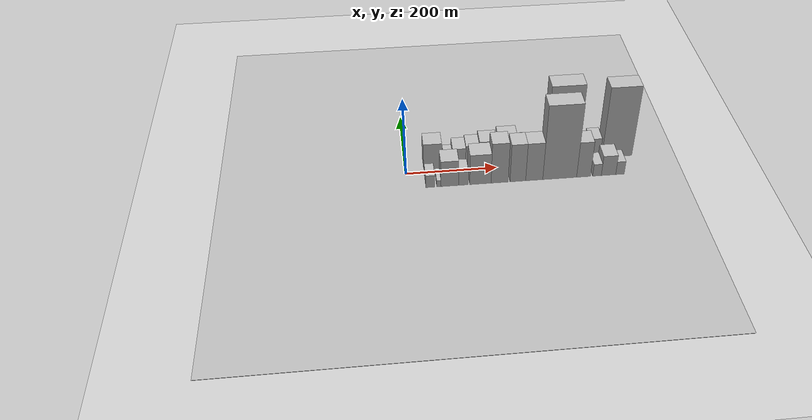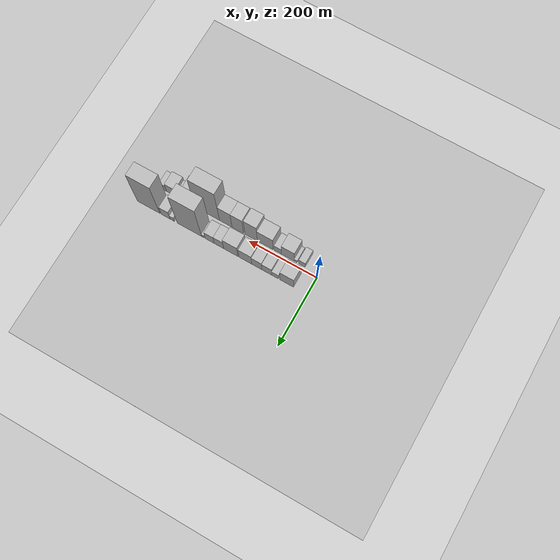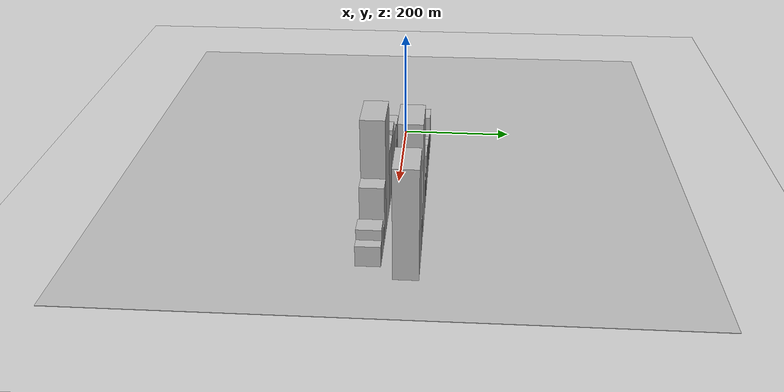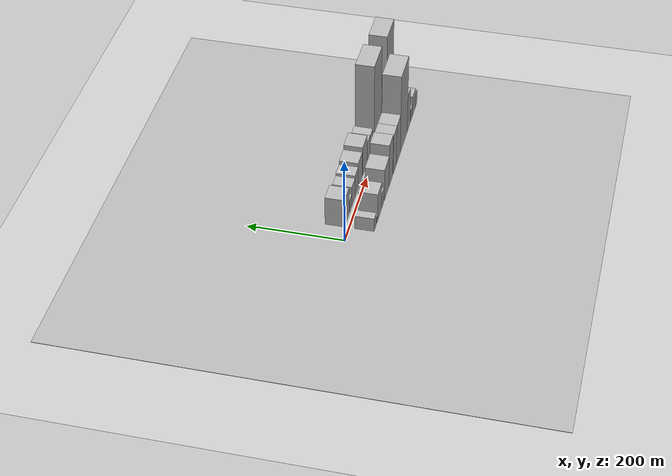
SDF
<?xml version="1.0" encoding="utf-8"?>

<sdf version="1.6">

   <world name="default">

      <gui fullscreen="0">

         <camera name="user_camera">

            <pose>-15 0 4.57585 0 0 0</pose>

            <view_controller>orbit</view_controller>

         </camera>

      </gui>

      <scene>

         <sky>

           <clouds>

             <speed>12</speed>

           </clouds>

         </sky>

         <ambient>0.4 0.4 0.4 1</ambient>

         <background>0.7 0.7 0.7 1</background>

         <shadows>1</shadows>

      </scene>

      <gravity>0 0 -9.8066</gravity>

      <magnetic_field>6e-06 2.3e-05 -4.2e-05</magnetic_field>

      <physics default="0" name="default_physics" type="ode">

         <ode>

            <solver>

               <type>quick</type>

               <iters>10</iters>

               <sor>1.0</sor>

               <use_dynamic_moi_rescaling>0</use_dynamic_moi_rescaling>

            </solver>

            <constraints>

               <cfm>0</cfm>

               <erp>0.2</erp>

               <contact_max_correcting_vel>100</contact_max_correcting_vel>

               <contact_surface_layer>0.001</contact_surface_layer>

            </constraints>

         </ode>

         <max_step_size>0.004</max_step_size>

         <real_time_factor>1</real_time_factor>

         <real_time_update_rate>250</real_time_update_rate>

      </physics>

      <light name="sun" type="directional">

         <cast_shadows>1</cast_shadows>

         <pose>0 0 10 0 0 0</pose>

         <diffuse>0.8 0.8 0.8 1</diffuse>

         <specular>0.2 0.2 0.2 1</specular>

         <attenuation>

            <range>1000</range>

            <constant>0.9</constant>

            <linear>0.01</linear>

            <quadratic>0.001</quadratic>

         </attenuation>

         <direction>-0.5 0.1 -0.9</direction>

      </light>

      <include>

         <name>ground_plane_1</name>

         <uri>model://HANNAS_ground_plane</uri>

         <pose>0 0 0  0 0 0</pose>

      </include>

      <include>

         <name>ground_plane_2</name>

         <uri>model://HANNAS_ground_plane</uri>

         <pose>100 0 0  0 0 0</pose>

      </include>

      <model name="building_1">

         <static>1</static>

         <pose frame="">60.0417 30.0000 0 0.000000 0.000000 1.570796</pose>

         <link name="link">

            <pose frame="">0 0 34.50 0 0 0</pose>

            <collision name="collision">

               <geometry>

                  <box>

                     <size>40.0000 40.0835 69.0000</size>

                  </box>

               </geometry>

               <max_contacts>10</max_contacts>

               <surface>

                  <contact>

                     <ode/>

                  </contact>

                  <bounce/>

                  <friction>

                     <torsional>

                        <ode/>

                     </torsional>

                     <ode/>

                  </friction>

               </surface>

            </collision>

            <visual name="visual">

               <cast_shadows>0</cast_shadows>

               <geometry>

                  <box>

                     <size>40.0000 40.0835 69.0000</size>

                  </box>

               </geometry>

               <material>

                  <script>

                     <uri>model://HANNAS_wall/materials/scripts</uri>

                     <uri>model://HANNAS_wall/materials/textures</uri>

                     <name>vrc/HANNAS_wall</name>

                  </script>

               </material>

            </visual>

            <self_collide>0</self_collide>

            <enable_wind>0</enable_wind>

            <kinematic>0</kinematic>

         </link>

      </model>

      <model name="building_2">

         <static>1</static>

         <pose frame="">93.8343 30.0000 0 0.000000 0.000000 1.570796</pose>

         <link name="link">

            <pose frame="">0 0 16.50 0 0 0</pose>

            <collision name="collision">

               <geometry>

                  <box>

                     <size>40.0000 19.5016 33.0000</size>

                  </box>

               </geometry>

               <max_contacts>10</max_contacts>

               <surface>

                  <contact>

                     <ode/>

                  </contact>

                  <bounce/>

                  <friction>

                     <torsional>

                        <ode/>

                     </torsional>

                     <ode/>

                  </friction>

               </surface>

            </collision>

            <visual name="visual">

               <cast_shadows>0</cast_shadows>

               <geometry>

                  <box>

                     <size>40.0000 19.5016 33.0000</size>

                  </box>

               </geometry>

               <material>

                  <script>

                     <uri>model://HANNAS_wall/materials/scripts</uri>

                     <uri>model://HANNAS_wall/materials/textures</uri>

                     <name>vrc/HANNAS_wall</name>

                  </script>

               </material>

            </visual>

            <self_collide>0</self_collide>

            <enable_wind>0</enable_wind>

            <kinematic>0</kinematic>

         </link>

      </model>

      <model name="building_3">

         <static>1</static>

         <pose frame="">118.0130 30.0000 0 0.000000 0.000000 1.570796</pose>

         <link name="link">

            <pose frame="">0 0 25.50 0 0 0</pose>

            <collision name="collision">

               <geometry>

                  <box>

                     <size>40.0000 28.8559 51.0000</size>

                  </box>

               </geometry>

               <max_contacts>10</max_contacts>

               <surface>

                  <contact>

                     <ode/>

                  </contact>

                  <bounce/>

                  <friction>

                     <torsional>

                        <ode/>

                     </torsional>

                     <ode/>

                  </friction>

               </surface>

            </collision>

            <visual name="visual">

               <cast_shadows>0</cast_shadows>

               <geometry>

                  <box>

                     <size>40.0000 28.8559 51.0000</size>

                  </box>

               </geometry>

               <material>

                  <script>

                     <uri>model://HANNAS_wall/materials/scripts</uri>

                     <uri>model://HANNAS_wall/materials/textures</uri>

                     <name>vrc/HANNAS_wall</name>

                  </script>

               </material>

            </visual>

            <self_collide>0</self_collide>

            <enable_wind>0</enable_wind>

            <kinematic>0</kinematic>

         </link>

      </model>

      <model name="building_4">

         <static>1</static>

         <pose frame="">147.2258 30.0000 0 0.000000 0.000000 1.570796</pose>

         <link name="link">

            <pose frame="">0 0 28.50 0 0 0</pose>

            <collision name="collision">

               <geometry>

                  <box>

                     <size>40.0000 29.5697 57.0000</size>

                  </box>

               </geometry>

               <max_contacts>10</max_contacts>

               <surface>

                  <contact>

                     <ode/>

                  </contact>

                  <bounce/>

                  <friction>

                     <torsional>

                        <ode/>

                     </torsional>

                     <ode/>

                  </friction>

               </surface>

            </collision>

            <visual name="visual">

               <cast_shadows>0</cast_shadows>

               <geometry>

                  <box>

                     <size>40.0000 29.5697 57.0000</size>

                  </box>

               </geometry>

               <material>

                  <script>

                     <uri>model://HANNAS_wall/materials/scripts</uri>

                     <uri>model://HANNAS_wall/materials/textures</uri>

                     <name>vrc/HANNAS_wall</name>

                  </script>

               </material>

            </visual>

            <self_collide>0</self_collide>

            <enable_wind>0</enable_wind>

            <kinematic>0</kinematic>

         </link>

      </model>

      <model name="building_5">

         <static>1</static>

         <pose frame="">180.6834 30.0000 0 0.000000 0.000000 1.570796</pose>

         <link name="link">

            <pose frame="">0 0 33.00 0 0 0</pose>

            <collision name="collision">

               <geometry>

                  <box>

                     <size>40.0000 37.3455 66.0000</size>

                  </box>

               </geometry>

               <max_contacts>10</max_contacts>

               <surface>

                  <contact>

                     <ode/>

                  </contact>

                  <bounce/>

                  <friction>

                     <torsional>

                        <ode/>

                     </torsional>

                     <ode/>

                  </friction>

               </surface>

            </collision>

            <visual name="visual">

               <cast_shadows>0</cast_shadows>

               <geometry>

                  <box>

                     <size>40.0000 37.3455 66.0000</size>

                  </box>

               </geometry>

               <material>

                  <script>

                     <uri>model://HANNAS_wall/materials/scripts</uri>

                     <uri>model://HANNAS_wall/materials/textures</uri>

                     <name>vrc/HANNAS_wall</name>

                  </script>

               </material>

            </visual>

            <self_collide>0</self_collide>

            <enable_wind>0</enable_wind>

            <kinematic>0</kinematic>

         </link>

      </model>

      <model name="building_6">

         <static>1</static>

         <pose frame="">223.3771 30.0000 0 0.000000 0.000000 1.570796</pose>

         <link name="link">

            <pose frame="">0 0 37.50 0 0 0</pose>

            <collision name="collision">

               <geometry>

                  <box>

                     <size>40.0000 42.0418 75.0000</size>

                  </box>

               </geometry>

               <max_contacts>10</max_contacts>

               <surface>

                  <contact>

                     <ode/>

                  </contact>

                  <bounce/>

                  <friction>

                     <torsional>

                        <ode/>

                     </torsional>

                     <ode/>

                  </friction>

               </surface>

            </collision>

            <visual name="visual">

               <cast_shadows>0</cast_shadows>

               <geometry>

                  <box>

                     <size>40.0000 42.0418 75.0000</size>

                  </box>

               </geometry>

               <material>

                  <script>

                     <uri>model://HANNAS_wall/materials/scripts</uri>

                     <uri>model://HANNAS_wall/materials/textures</uri>

                     <name>vrc/HANNAS_wall</name>

                  </script>

               </material>

            </visual>

            <self_collide>0</self_collide>

            <enable_wind>0</enable_wind>

            <kinematic>0</kinematic>

         </link>

      </model>

      <model name="building_7">

         <static>1</static>

         <pose frame="">258.3676 30.0000 0 0.000000 0.000000 1.570796</pose>

         <link name="link">

            <pose frame="">0 0 27.00 0 0 0</pose>

            <collision name="collision">

               <geometry>

                  <box>

                     <size>40.0000 27.9392 54.0000</size>

                  </box>

               </geometry>

               <max_contacts>10</max_contacts>

               <surface>

                  <contact>

                     <ode/>

                  </contact>

                  <bounce/>

                  <friction>

                     <torsional>

                        <ode/>

                     </torsional>

                     <ode/>

                  </friction>

               </surface>

            </collision>

            <visual name="visual">

               <cast_shadows>0</cast_shadows>

               <geometry>

                  <box>

                     <size>40.0000 27.9392 54.0000</size>

                  </box>

               </geometry>

               <material>

                  <script>

                     <uri>model://HANNAS_wall/materials/scripts</uri>

                     <uri>model://HANNAS_wall/materials/textures</uri>

                     <name>vrc/HANNAS_wall</name>

                  </script>

               </material>

            </visual>

            <self_collide>0</self_collide>

            <enable_wind>0</enable_wind>

            <kinematic>0</kinematic>

         </link>

      </model>

      <model name="building_8">

         <static>1</static>

         <pose frame="">285.7887 30.0000 0 0.000000 0.000000 1.570796</pose>

         <link name="link">

            <pose frame="">0 0 25.50 0 0 0</pose>

            <collision name="collision">

               <geometry>

                  <box>

                     <size>40.0000 26.9031 51.0000</size>

                  </box>

               </geometry>

               <max_contacts>10</max_contacts>

               <surface>

                  <contact>

                     <ode/>

                  </contact>

                  <bounce/>

                  <friction>

                     <torsional>

                        <ode/>

                     </torsional>

                     <ode/>

                  </friction>

               </surface>

            </collision>

            <visual name="visual">

               <cast_shadows>0</cast_shadows>

               <geometry>

                  <box>

                     <size>40.0000 26.9031 51.0000</size>

                  </box>

               </geometry>

               <material>

                  <script>

                     <uri>model://HANNAS_wall/materials/scripts</uri>

                     <uri>model://HANNAS_wall/materials/textures</uri>

                     <name>vrc/HANNAS_wall</name>

                  </script>

               </material>

            </visual>

            <self_collide>0</self_collide>

            <enable_wind>0</enable_wind>

            <kinematic>0</kinematic>

         </link>

      </model>

      <model name="building_9">

         <static>1</static>

         <pose frame="">306.2290 30.0000 0 0.000000 0.000000 1.570796</pose>

         <link name="link">

            <pose frame="">0 0 9.00 0 0 0</pose>

            <collision name="collision">

               <geometry>

                  <box>

                     <size>40.0000 7.9774 18.0000</size>

                  </box>

               </geometry>

               <max_contacts>10</max_contacts>

               <surface>

                  <contact>

                     <ode/>

                  </contact>

                  <bounce/>

                  <friction>

                     <torsional>

                        <ode/>

                     </torsional>

                     <ode/>

                  </friction>

               </surface>

            </collision>

            <visual name="visual">

               <cast_shadows>0</cast_shadows>

               <geometry>

                  <box>

                     <size>40.0000 7.9774 18.0000</size>

                  </box>

               </geometry>

               <material>

                  <script>

                     <uri>model://HANNAS_wall/materials/scripts</uri>

                     <uri>model://HANNAS_wall/materials/textures</uri>

                     <name>vrc/HANNAS_wall</name>

                  </script>

               </material>

            </visual>

            <self_collide>0</self_collide>

            <enable_wind>0</enable_wind>

            <kinematic>0</kinematic>

         </link>

      </model>

      <model name="building_10">

         <static>1</static>

         <pose frame="">346.6961 30.0000 0 0.000000 0.000000 1.570796</pose>

         <link name="link">

            <pose frame="">0 0 100.50 0 0 0</pose>

            <collision name="collision">

               <geometry>

                  <box>

                     <size>40.0000 72.9568 201.0000</size>

                  </box>

               </geometry>

               <max_contacts>10</max_contacts>

               <surface>

                  <contact>

                     <ode/>

                  </contact>

                  <bounce/>

                  <friction>

                     <torsional>

                        <ode/>

                     </torsional>

                     <ode/>

                  </friction>

               </surface>

            </collision>

            <visual name="visual">

               <cast_shadows>0</cast_shadows>

               <geometry>

                  <box>

                     <size>40.0000 72.9568 201.0000</size>

                  </box>

               </geometry>

               <material>

                  <script>

                     <uri>model://HANNAS_wall/materials/scripts</uri>

                     <uri>model://HANNAS_wall/materials/textures</uri>

                     <name>vrc/HANNAS_wall</name>

                  </script>

               </material>

            </visual>

            <self_collide>0</self_collide>

            <enable_wind>0</enable_wind>

            <kinematic>0</kinematic>

         </link>

      </model>

      <model name="building_11">

         <static>1</static>

         <pose frame="">398.4116 30.0000 0 0.000000 0.000000 1.570796</pose>

         <link name="link">

            <pose frame="">0 0 13.50 0 0 0</pose>

            <collision name="collision">

               <geometry>

                  <box>

                     <size>40.0000 12.4742 27.0000</size>

                  </box>

               </geometry>

               <max_contacts>10</max_contacts>

               <surface>

                  <contact>

                     <ode/>

                  </contact>

                  <bounce/>

                  <friction>

                     <torsional>

                        <ode/>

                     </torsional>

                     <ode/>

                  </friction>

               </surface>

            </collision>

            <visual name="visual">

               <cast_shadows>0</cast_shadows>

               <geometry>

                  <box>

                     <size>40.0000 12.4742 27.0000</size>

                  </box>

               </geometry>

               <material>

                  <script>

                     <uri>model://HANNAS_wall/materials/scripts</uri>

                     <uri>model://HANNAS_wall/materials/textures</uri>

                     <name>vrc/HANNAS_wall</name>

                  </script>

               </material>

            </visual>

            <self_collide>0</self_collide>

            <enable_wind>0</enable_wind>

            <kinematic>0</kinematic>

         </link>

      </model>

      <model name="building_12">

         <static>1</static>

         <pose frame="">418.2491 30.0000 0 0.000000 0.000000 1.570796</pose>

         <link name="link">

            <pose frame="">0 0 27.00 0 0 0</pose>

            <collision name="collision">

               <geometry>

                  <box>

                     <size>40.0000 27.2007 54.0000</size>

                  </box>

               </geometry>

               <max_contacts>10</max_contacts>

               <surface>

                  <contact>

                     <ode/>

                  </contact>

                  <bounce/>

                  <friction>

                     <torsional>

                        <ode/>

                     </torsional>

                     <ode/>

                  </friction>

               </surface>

            </collision>

            <visual name="visual">

               <cast_shadows>0</cast_shadows>

               <geometry>

                  <box>

                     <size>40.0000 27.2007 54.0000</size>

                  </box>

               </geometry>

               <material>

                  <script>

                     <uri>model://HANNAS_wall/materials/scripts</uri>

                     <uri>model://HANNAS_wall/materials/textures</uri>

                     <name>vrc/HANNAS_wall</name>

                  </script>

               </material>

            </visual>

            <self_collide>0</self_collide>

            <enable_wind>0</enable_wind>

            <kinematic>0</kinematic>

         </link>

      </model>

      <model name="building_13">

         <static>1</static>

         <pose frame="">469.8617 30.0000 0 0.000000 0.000000 1.570796</pose>

         <link name="link">

            <pose frame="">0 0 94.50 0 0 0</pose>

            <collision name="collision">

               <geometry>

                  <box>

                     <size>40.0000 68.0245 189.0000</size>

                  </box>

               </geometry>

               <max_contacts>10</max_contacts>

               <surface>

                  <contact>

                     <ode/>

                  </contact>

                  <bounce/>

                  <friction>

                     <torsional>

                        <ode/>

                     </torsional>

                     <ode/>

                  </friction>

               </surface>

            </collision>

            <visual name="visual">

               <cast_shadows>0</cast_shadows>

               <geometry>

                  <box>

                     <size>40.0000 68.0245 189.0000</size>

                  </box>

               </geometry>

               <material>

                  <script>

                     <uri>model://HANNAS_wall/materials/scripts</uri>

                     <uri>model://HANNAS_wall/materials/textures</uri>

                     <name>vrc/HANNAS_wall</name>

                  </script>

               </material>

            </visual>

            <self_collide>0</self_collide>

            <enable_wind>0</enable_wind>

            <kinematic>0</kinematic>

         </link>

      </model>

      <model name="building_14">

         <static>1</static>

         <pose frame="">49.6738 -30.0000 0 0.000000 0.000000 1.570796</pose>

         <link name="link">

            <pose frame="">0 0 16.50 0 0 0</pose>

            <collision name="collision">

               <geometry>

                  <box>

                     <size>40.0000 19.3477 33.0000</size>

                  </box>

               </geometry>

               <max_contacts>10</max_contacts>

               <surface>

                  <contact>

                     <ode/>

                  </contact>

                  <bounce/>

                  <friction>

                     <torsional>

                        <ode/>

                     </torsional>

                     <ode/>

                  </friction>

               </surface>

            </collision>

            <visual name="visual">

               <cast_shadows>0</cast_shadows>

               <geometry>

                  <box>

                     <size>40.0000 19.3477 33.0000</size>

                  </box>

               </geometry>

               <material>

                  <script>

                     <uri>model://HANNAS_wall/materials/scripts</uri>

                     <uri>model://HANNAS_wall/materials/textures</uri>

                     <name>vrc/HANNAS_wall</name>

                  </script>

               </material>

            </visual>

            <self_collide>0</self_collide>

            <enable_wind>0</enable_wind>

            <kinematic>0</kinematic>

         </link>

      </model>

      <model name="building_15">

         <static>1</static>

         <pose frame="">67.7921 -30.0000 0 0.000000 0.000000 1.570796</pose>

         <link name="link">

            <pose frame="">0 0 9.00 0 0 0</pose>

            <collision name="collision">

               <geometry>

                  <box>

                     <size>40.0000 8.8889 18.0000</size>

                  </box>

               </geometry>

               <max_contacts>10</max_contacts>

               <surface>

                  <contact>

                     <ode/>

                  </contact>

                  <bounce/>

                  <friction>

                     <torsional>

                        <ode/>

                     </torsional>

                     <ode/>

                  </friction>

               </surface>

            </collision>

            <visual name="visual">

               <cast_shadows>0</cast_shadows>

               <geometry>

                  <box>

                     <size>40.0000 8.8889 18.0000</size>

                  </box>

               </geometry>

               <material>

                  <script>

                     <uri>model://HANNAS_wall/materials/scripts</uri>

                     <uri>model://HANNAS_wall/materials/textures</uri>

                     <name>vrc/HANNAS_wall</name>

                  </script>

               </material>

            </visual>

            <self_collide>0</self_collide>

            <enable_wind>0</enable_wind>

            <kinematic>0</kinematic>

         </link>

      </model>

      <model name="building_16">

         <static>1</static>

         <pose frame="">91.3088 -30.0000 0 0.000000 0.000000 1.570796</pose>

         <link name="link">

            <pose frame="">0 0 34.50 0 0 0</pose>

            <collision name="collision">

               <geometry>

                  <box>

                     <size>40.0000 38.1445 69.0000</size>

                  </box>

               </geometry>

               <max_contacts>10</max_contacts>

               <surface>

                  <contact>

                     <ode/>

                  </contact>

                  <bounce/>

                  <friction>

                     <torsional>

                        <ode/>

                     </torsional>

                     <ode/>

                  </friction>

               </surface>

            </collision>

            <visual name="visual">

               <cast_shadows>0</cast_shadows>

               <geometry>

                  <box>

                     <size>40.0000 38.1445 69.0000</size>

                  </box>

               </geometry>

               <material>

                  <script>

                     <uri>model://HANNAS_wall/materials/scripts</uri>

                     <uri>model://HANNAS_wall/materials/textures</uri>

                     <name>vrc/HANNAS_wall</name>

                  </script>

               </material>

            </visual>

            <self_collide>0</self_collide>

            <enable_wind>0</enable_wind>

            <kinematic>0</kinematic>

         </link>

      </model>

      <model name="building_17">

         <static>1</static>

         <pose frame="">120.7764 -30.0000 0 0.000000 0.000000 1.570796</pose>

         <link name="link">

            <pose frame="">0 0 19.50 0 0 0</pose>

            <collision name="collision">

               <geometry>

                  <box>

                     <size>40.0000 20.7908 39.0000</size>

                  </box>

               </geometry>

               <max_contacts>10</max_contacts>

               <surface>

                  <contact>

                     <ode/>

                  </contact>

                  <bounce/>

                  <friction>

                     <torsional>

                        <ode/>

                     </torsional>

                     <ode/>

                  </friction>

               </surface>

            </collision>

            <visual name="visual">

               <cast_shadows>0</cast_shadows>

               <geometry>

                  <box>

                     <size>40.0000 20.7908 39.0000</size>

                  </box>

               </geometry>

               <material>

                  <script>

                     <uri>model://HANNAS_wall/materials/scripts</uri>

                     <uri>model://HANNAS_wall/materials/textures</uri>

                     <name>vrc/HANNAS_wall</name>

                  </script>

               </material>

            </visual>

            <self_collide>0</self_collide>

            <enable_wind>0</enable_wind>

            <kinematic>0</kinematic>

         </link>

      </model>

      <model name="building_18">

         <static>1</static>

         <pose frame="">157.1958 -30.0000 0 0.000000 0.000000 1.570796</pose>

         <link name="link">

            <pose frame="">0 0 40.50 0 0 0</pose>

            <collision name="collision">

               <geometry>

                  <box>

                     <size>40.0000 46.0478 81.0000</size>

                  </box>

               </geometry>

               <max_contacts>10</max_contacts>

               <surface>

                  <contact>

                     <ode/>

                  </contact>

                  <bounce/>

                  <friction>

                     <torsional>

                        <ode/>

                     </torsional>

                     <ode/>

                  </friction>

               </surface>

            </collision>

            <visual name="visual">

               <cast_shadows>0</cast_shadows>

               <geometry>

                  <box>

                     <size>40.0000 46.0478 81.0000</size>

                  </box>

               </geometry>

               <material>

                  <script>

                     <uri>model://HANNAS_wall/materials/scripts</uri>

                     <uri>model://HANNAS_wall/materials/textures</uri>

                     <name>vrc/HANNAS_wall</name>

                  </script>

               </material>

            </visual>

            <self_collide>0</self_collide>

            <enable_wind>0</enable_wind>

            <kinematic>0</kinematic>

         </link>

      </model>

      <model name="building_19">

         <static>1</static>

         <pose frame="">198.6866 -30.0000 0 0.000000 0.000000 1.570796</pose>

         <link name="link">

            <pose frame="">0 0 54.00 0 0 0</pose>

            <collision name="collision">

               <geometry>

                  <box>

                     <size>40.0000 36.9339 108.0000</size>

                  </box>

               </geometry>

               <max_contacts>10</max_contacts>

               <surface>

                  <contact>

                     <ode/>

                  </contact>

                  <bounce/>

                  <friction>

                     <torsional>

                        <ode/>

                     </torsional>

                     <ode/>

                  </friction>

               </surface>

            </collision>

            <visual name="visual">

               <cast_shadows>0</cast_shadows>

               <geometry>

                  <box>

                     <size>40.0000 36.9339 108.0000</size>

                  </box>

               </geometry>

               <material>

                  <script>

                     <uri>model://HANNAS_wall/materials/scripts</uri>

                     <uri>model://HANNAS_wall/materials/textures</uri>

                     <name>vrc/HANNAS_wall</name>

                  </script>

               </material>

            </visual>

            <self_collide>0</self_collide>

            <enable_wind>0</enable_wind>

            <kinematic>0</kinematic>

         </link>

      </model>

      <model name="building_20">

         <static>1</static>

         <pose frame="">238.1569 -30.0000 0 0.000000 0.000000 1.570796</pose>

         <link name="link">

            <pose frame="">0 0 51.00 0 0 0</pose>

            <collision name="collision">

               <geometry>

                  <box>

                     <size>40.0000 34.0068 102.0000</size>

                  </box>

               </geometry>

               <max_contacts>10</max_contacts>

               <surface>

                  <contact>

                     <ode/>

                  </contact>

                  <bounce/>

                  <friction>

                     <torsional>

                        <ode/>

                     </torsional>

                     <ode/>

                  </friction>

               </surface>

            </collision>

            <visual name="visual">

               <cast_shadows>0</cast_shadows>

               <geometry>

                  <box>

                     <size>40.0000 34.0068 102.0000</size>

                  </box>

               </geometry>

               <material>

                  <script>

                     <uri>model://HANNAS_wall/materials/scripts</uri>

                     <uri>model://HANNAS_wall/materials/textures</uri>

                     <name>vrc/HANNAS_wall</name>

                  </script>

               </material>

            </visual>

            <self_collide>0</self_collide>

            <enable_wind>0</enable_wind>

            <kinematic>0</kinematic>

         </link>

      </model>

      <model name="building_21">

         <static>1</static>

         <pose frame="">273.7843 -30.0000 0 0.000000 0.000000 1.570796</pose>

         <link name="link">

            <pose frame="">0 0 51.00 0 0 0</pose>

            <collision name="collision">

               <geometry>

                  <box>

                     <size>40.0000 37.2479 102.0000</size>

                  </box>

               </geometry>

               <max_contacts>10</max_contacts>

               <surface>

                  <contact>

                     <ode/>

                  </contact>

                  <bounce/>

                  <friction>

                     <torsional>

                        <ode/>

                     </torsional>

                     <ode/>

                  </friction>

               </surface>

            </collision>

            <visual name="visual">

               <cast_shadows>0</cast_shadows>

               <geometry>

                  <box>

                     <size>40.0000 37.2479 102.0000</size>

                  </box>

               </geometry>

               <material>

                  <script>

                     <uri>model://HANNAS_wall/materials/scripts</uri>

                     <uri>model://HANNAS_wall/materials/textures</uri>

                     <name>vrc/HANNAS_wall</name>

                  </script>

               </material>

            </visual>

            <self_collide>0</self_collide>

            <enable_wind>0</enable_wind>

            <kinematic>0</kinematic>

         </link>

      </model>

      <model name="building_22">

         <static>1</static>

         <pose frame="">329.4310 -30.0000 0 0.000000 0.000000 1.570796</pose>

         <link name="link">

            <pose frame="">0 0 99.00 0 0 0</pose>

            <collision name="collision">

               <geometry>

                  <box>

                     <size>40.0000 74.0456 198.0000</size>

                  </box>

               </geometry>

               <max_contacts>10</max_contacts>

               <surface>

                  <contact>

                     <ode/>

                  </contact>

                  <bounce/>

                  <friction>

                     <torsional>

                        <ode/>

                     </torsional>

                     <ode/>

                  </friction>

               </surface>

            </collision>

            <visual name="visual">

               <cast_shadows>0</cast_shadows>

               <geometry>

                  <box>

                     <size>40.0000 74.0456 198.0000</size>

                  </box>

               </geometry>

               <material>

                  <script>

                     <uri>model://HANNAS_wall/materials/scripts</uri>

                     <uri>model://HANNAS_wall/materials/textures</uri>

                     <name>vrc/HANNAS_wall</name>

                  </script>

               </material>

            </visual>

            <self_collide>0</self_collide>

            <enable_wind>0</enable_wind>

            <kinematic>0</kinematic>

         </link>

      </model>

      <model name="building_23">

         <static>1</static>

         <pose frame="">381.7423 -30.0000 0 0.000000 0.000000 1.570796</pose>

         <link name="link">

            <pose frame="">0 0 48.00 0 0 0</pose>

            <collision name="collision">

               <geometry>

                  <box>

                     <size>40.0000 30.5769 96.0000</size>

                  </box>

               </geometry>

               <max_contacts>10</max_contacts>

               <surface>

                  <contact>

                     <ode/>

                  </contact>

                  <bounce/>

                  <friction>

                     <torsional>

                        <ode/>

                     </torsional>

                     <ode/>

                  </friction>

               </surface>

            </collision>

            <visual name="visual">

               <cast_shadows>0</cast_shadows>

               <geometry>

                  <box>

                     <size>40.0000 30.5769 96.0000</size>

                  </box>

               </geometry>

               <material>

                  <script>

                     <uri>model://HANNAS_wall/materials/scripts</uri>

                     <uri>model://HANNAS_wall/materials/textures</uri>

                     <name>vrc/HANNAS_wall</name>

                  </script>

               </material>

            </visual>

            <self_collide>0</self_collide>

            <enable_wind>0</enable_wind>

            <kinematic>0</kinematic>

         </link>

      </model>

      <model name="building_24">

         <static>1</static>

         <pose frame="">411.4692 -30.0000 0 0.000000 0.000000 1.570796</pose>

         <link name="link">

            <pose frame="">0 0 16.50 0 0 0</pose>

            <collision name="collision">

               <geometry>

                  <box>

                     <size>40.0000 18.8770 33.0000</size>

                  </box>

               </geometry>

               <max_contacts>10</max_contacts>

               <surface>

                  <contact>

                     <ode/>

                  </contact>

                  <bounce/>

                  <friction>

                     <torsional>

                        <ode/>

                     </torsional>

                     <ode/>

                  </friction>

               </surface>

            </collision>

            <visual name="visual">

               <cast_shadows>0</cast_shadows>

               <geometry>

                  <box>

                     <size>40.0000 18.8770 33.0000</size>

                  </box>

               </geometry>

               <material>

                  <script>

                     <uri>model://HANNAS_wall/materials/scripts</uri>

                     <uri>model://HANNAS_wall/materials/textures</uri>

                     <name>vrc/HANNAS_wall</name>

                  </script>

               </material>

            </visual>

            <self_collide>0</self_collide>

            <enable_wind>0</enable_wind>

            <kinematic>0</kinematic>

         </link>

      </model>

      <model name="building_25">

         <static>1</static>

         <pose frame="">436.7880 -30.0000 0 0.000000 0.000000 1.570796</pose>

         <link name="link">

            <pose frame="">0 0 27.00 0 0 0</pose>

            <collision name="collision">

               <geometry>

                  <box>

                     <size>40.0000 31.7606 54.0000</size>

                  </box>

               </geometry>

               <max_contacts>10</max_contacts>

               <surface>

                  <contact>

                     <ode/>

                  </contact>

                  <bounce/>

                  <friction>

                     <torsional>

                        <ode/>

                     </torsional>

                     <ode/>

                  </friction>

               </surface>

            </collision>

            <visual name="visual">

               <cast_shadows>0</cast_shadows>

               <geometry>

                  <box>

                     <size>40.0000 31.7606 54.0000</size>

                  </box>

               </geometry>

               <material>

                  <script>

                     <uri>model://HANNAS_wall/materials/scripts</uri>

                     <uri>model://HANNAS_wall/materials/textures</uri>

                     <name>vrc/HANNAS_wall</name>

                  </script>

               </material>

            </visual>

            <self_collide>0</self_collide>

            <enable_wind>0</enable_wind>

            <kinematic>0</kinematic>

         </link>

      </model>

      <model name="building_26">

         <static>1</static>

         <pose frame="">462.1056 -30.0000 0 0.000000 0.000000 1.570796</pose>

         <link name="link">

            <pose frame="">0 0 18.00 0 0 0</pose>

            <collision name="collision">

               <geometry>

                  <box>

                     <size>40.0000 18.8747 36.0000</size>

                  </box>

               </geometry>

               <max_contacts>10</max_contacts>

               <surface>

                  <contact>

                     <ode/>

                  </contact>

                  <bounce/>

                  <friction>

                     <torsional>

                        <ode/>

                     </torsional>

                     <ode/>

                  </friction>

               </surface>

            </collision>

            <visual name="visual">

               <cast_shadows>0</cast_shadows>

               <geometry>

                  <box>

                     <size>40.0000 18.8747 36.0000</size>

                  </box>

               </geometry>

               <material>

                  <script>

                     <uri>model://HANNAS_wall/materials/scripts</uri>

                     <uri>model://HANNAS_wall/materials/textures</uri>

                     <name>vrc/HANNAS_wall</name>

                  </script>

               </material>

            </visual>

            <self_collide>0</self_collide>

            <enable_wind>0</enable_wind>

            <kinematic>0</kinematic>

         </link>

      </model>

   </world>

</sdf>

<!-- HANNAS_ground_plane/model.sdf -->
<sdf version="1.4">
<model name="HANNAS_ground_plane">
  <static>true</static>
    <link name="link">
      <collision name="collision">
        <geometry>
          <plane>
            <normal>0 0 1</normal>
            <size>1000 1000</size>
          </plane>
        </geometry>
        <surface>
          <friction>
            <ode>
              <mu>100</mu>
              <mu2>50</mu2>
            </ode>
          </friction>
        </surface>
      </collision>
      <visual name="visual">
        <cast_shadows>false</cast_shadows>
        <geometry>
          <plane>
            <normal>0 0 1</normal>
            <size>1000 1000</size>
          </plane>
        </geometry>
        <material>
          <script>
            <uri>model://HANNAS_ground_plane/materials/scripts/HANNAS_ground_plane.material</uri>
	    <uri>model://HANNAS_ground_plane/materials/textures</uri>
            <name>HANNASGroundPlane/Image</name>
          </script>
        </material>
      </visual>
    </link>
  </model>
</sdf>
